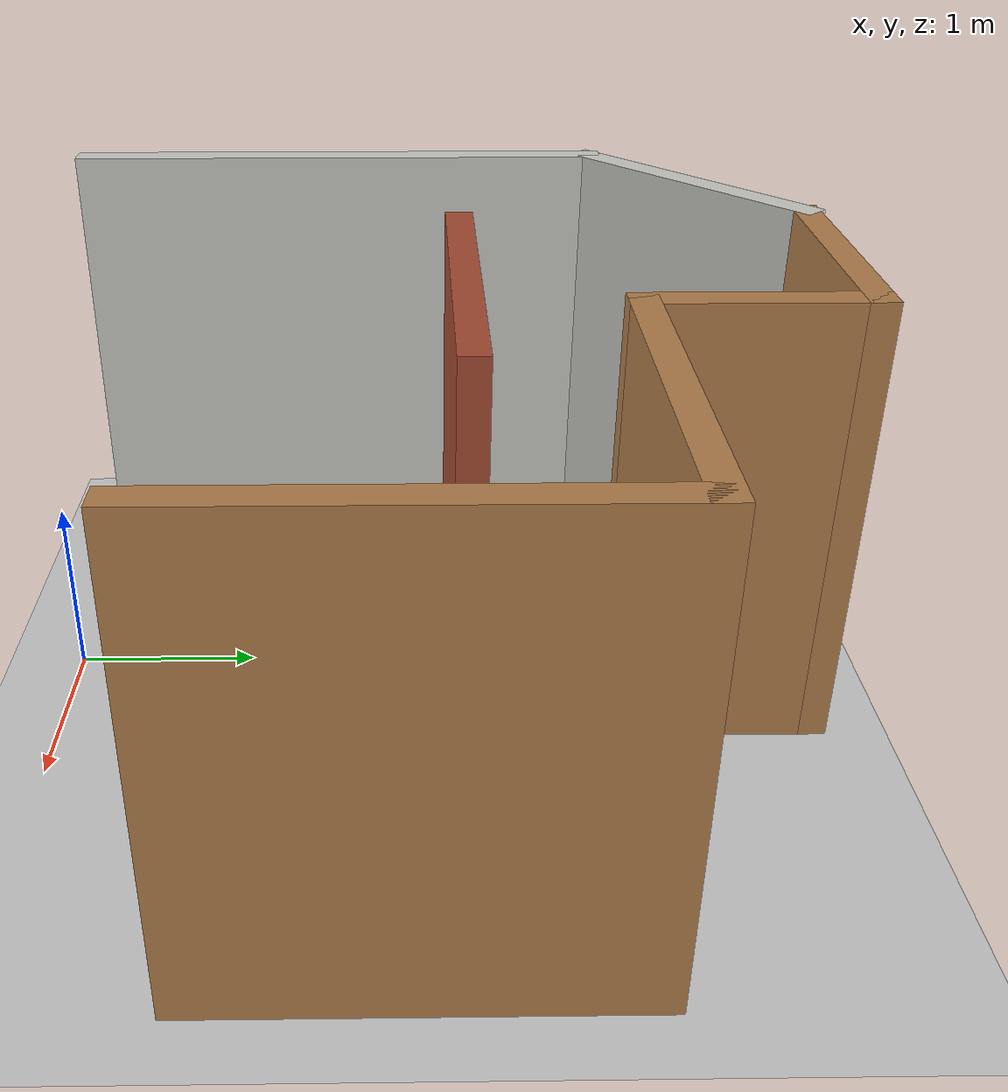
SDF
<sdf version="1.7">
 <world name="default">
  <light name="sun" type="directional">
   <pose>0 0 10 0 -0 0</pose>
   <diffuse>0.8 0.8 0.8 1</diffuse>
   <specular>0.2 0.2 0.2 1</specular>
   <attenuation>
    <range>1000</range>
    <constant>0.9</constant>
    <linear>0.01</linear>
    <quadratic>0.001</quadratic>
   </attenuation>
   <direction>-0.5 0.1 -0.9</direction>
   <spot><inner_angle>0</inner_angle><outer_angle>0</outer_angle><falloff>0</falloff></spot>
  </light>
  <model name="ground_plane">
   <static>1</static>
   <link name="link">
    <collision name="collision">
     <geometry><plane><normal>0 0 1</normal><size>100 100</size></plane></geometry>
     <surface>
      <contact><collide_bitmask>65535</collide_bitmask></contact>
      <friction><ode><mu>100</mu><mu2>50</mu2></ode></friction>
     </surface>
    </collision>
    <visual name="visual">
     <cast_shadows>0</cast_shadows>
     <geometry><plane><normal>0 0 1</normal><size>100 100</size></plane></geometry>
     <material>
      <script><uri>file://media/materials/scripts/gazebo.material</uri><name>Gazebo/Grey</name></script>
     </material>
    </visual>
   </link>
  </model>
  <gravity>0 0 -9.8</gravity>
  <magnetic_field>6e-06 2.3e-05 -4.2e-05</magnetic_field>
  <atmosphere type="adiabatic"/>
  <physics type="ode">
   <max_step_size>0.001</max_step_size>
   <real_time_factor>1</real_time_factor>
   <real_time_update_rate>1000</real_time_update_rate>
  </physics>
  <scene><ambient>0.4 0.4 0.4 1</ambient><background>0.7 0.7 0.7 1</background><shadows>1</shadows></scene>
  <spherical_coordinates>
   <surface_model>EARTH_WGS84</surface_model>
   <latitude_deg>0</latitude_deg>
   <longitude_deg>0</longitude_deg>
   <elevation>0</elevation>
   <heading_deg>0</heading_deg>
  </spherical_coordinates>
  <model name="testroom">
   <pose>0.31453 2.05047 0 0 -0 0</pose>
   <link name="Wall_0">
    <collision name="Wall_0_Collision">
     <geometry><box><size>2 0.15 2.5</size></box></geometry>
     <pose>0 0 1.25 0 -0 0</pose>
    </collision>
    <visual name="Wall_0_Visual">
     <pose>0 0 1.25 0 -0 0</pose>
     <geometry><box><size>2 0.15 2.5</size></box></geometry>
     <material>
      <script><uri>file://media/materials/scripts/gazebo.material</uri><name>Gazebo/Bricks</name></script>
      <ambient>1 1 1 1</ambient>
     </material>
     <meta><layer>0</layer></meta>
    </visual>
    <pose>0.03047 0.15953 0 0 -0 0</pose>
   </link>
   <link name="Wall_10">
    <collision name="Wall_10_Collision">
     <geometry><box><size>1.5 0.15 2.5</size></box></geometry>
     <pose>0 0 1.25 0 -0 0</pose>
    </collision>
    <visual name="Wall_10_Visual">
     <pose>0 0 1.25 0 -0 0</pose>
     <geometry><box><size>1.5 0.15 2.5</size></box></geometry>
     <material>
      <script><uri>file://media/materials/scripts/gazebo.material</uri><name>Gazebo/Wood</name></script>
      <ambient>1 1 1 1</ambient>
     </material>
     <meta><layer>0</layer></meta>
    </visual>
    <pose>-0.31953 2.06953 0 0 -0 3.14159</pose>
   </link>
   <link name="Wall_11">
    <collision name="Wall_11_Collision">
     <geometry><box><size>1.74289 0.15 2.5</size></box></geometry>
     <pose>0 0 1.25 0 -0 0</pose>
    </collision>
    <visual name="Wall_11_Visual">
     <pose>0 0 1.25 0 -0 0</pose>
     <geometry><box><size>1.74289 0.15 2.5</size></box></geometry>
     <material>
      <script><uri>file://media/materials/scripts/gazebo.material</uri><name>Gazebo/CeilingTiled</name></script>
      <ambient>1 1 1 1</ambient>
     </material>
     <meta><layer>0</layer></meta>
    </visual>
    <pose>-1.58453 1.53453 0 0 -0 -2.40504</pose>
   </link>
   <link name="Wall_2">
    <collision name="Wall_2_Collision">
     <geometry><box><size>2 0.15 2.5</size></box></geometry>
     <pose>0 0 1.25 0 -0 0</pose>
    </collision>
    <visual name="Wall_2_Visual">
     <pose>0 0 1.25 0 -0 0</pose>
     <geometry><box><size>2 0.15 2.5</size></box></geometry>
     <material>
      <script><uri>file://media/materials/scripts/gazebo.material</uri><name>Gazebo/Wood</name></script>
      <ambient>1 1 1 1</ambient>
     </material>
     <meta><layer>0</layer></meta>
    </visual>
    <pose>1.28047 0.96953 0 0 -0 3.14159</pose>
   </link>
   <link name="Wall_4">
    <collision name="Wall_4_Collision">
     <geometry><box><size>2.25 0.15 2.5</size></box></geometry>
     <pose>0 0 1.25 0 -0 0</pose>
    </collision>
    <visual name="Wall_4_Visual">
     <pose>0 0 1.25 0 -0 0</pose>
     <geometry><box><size>2.25 0.15 2.5</size></box></geometry>
     <material>
      <script><uri>file://media/materials/scripts/gazebo.material</uri><name>Gazebo/Wood</name></script>
      <ambient>1 1 1 1</ambient>
     </material>
     <meta><layer>0</layer></meta>
    </visual>
    <pose>2.20547 -0.08047 0 0 -0 -1.5708</pose>
   </link>
   <link name="Wall_7">
    <collision name="Wall_7_Collision">
     <geometry><box><size>3.25 0.15 2.5</size></box></geometry>
     <pose>0 0 1.25 0 -0 0</pose>
    </collision>
    <visual name="Wall_7_Visual">
     <pose>0 0 1.25 0 -0 0</pose>
     <geometry><box><size>3.25 0.15 2.5</size></box></geometry>
     <material>
      <script><uri>file://media/materials/scripts/gazebo.material</uri><name>Gazebo/CeilingTiled</name></script>
      <ambient>1 1 1 1</ambient>
     </material>
     <meta><layer>0</layer></meta>
    </visual>
    <pose>-2.17453 -0.55047 0 0 -0 -1.5708</pose>
   </link>
   <link name="Wall_9">
    <collision name="Wall_9_Collision">
     <geometry><box><size>1.25 0.15 2.5</size></box></geometry>
     <pose>0 0 1.25 0 -0 0</pose>
    </collision>
    <visual name="Wall_9_Visual">
     <pose>0 0 1.25 0 -0 0</pose>
     <geometry><box><size>1.25 0.15 2.5</size></box></geometry>
     <material>
      <script><uri>file://media/materials/scripts/gazebo.material</uri><name>Gazebo/Wood</name></script>
      <ambient>1 1 1 1</ambient>
     </material>
     <meta><layer>0</layer></meta>
    </visual>
    <pose>0.35547 1.51953 0 0 -0 1.5708</pose>
   </link>
   <static>1</static>
  </model>
 </world>
</sdf>
